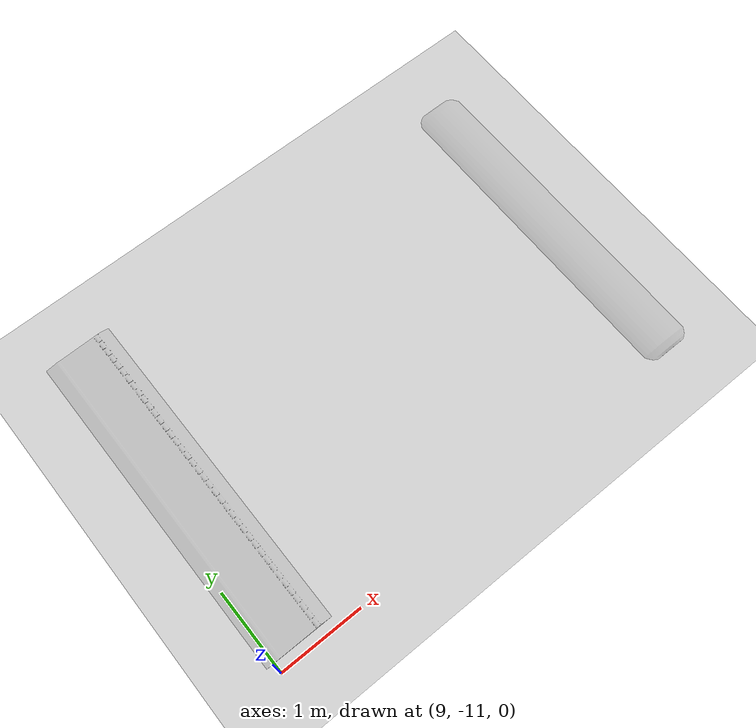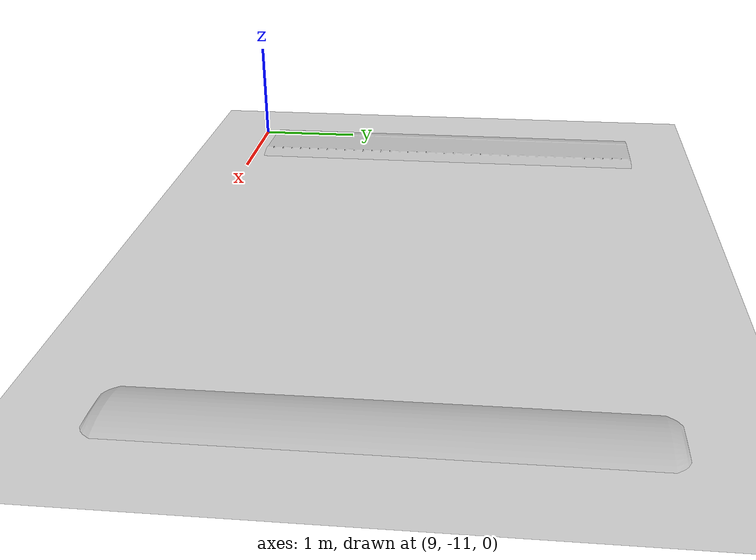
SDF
<sdf version="1.7">
 <world name="default">
  <model name="ground_plane">
   <static>1</static>
   <link name="link">
    <collision name="collision">
     <geometry><plane><normal>0 0 1</normal><size>100 100</size></plane></geometry>
     <surface><friction><ode><mu>100</mu><mu2>50</mu2></ode></friction></surface>
    </collision>
    <visual name="visual">
     <cast_shadows>0</cast_shadows>
     <geometry><plane><normal>0 0 1</normal><size>100 100</size></plane></geometry>
     <material>
      <script><uri>file://media/materials/scripts/gazebo.material</uri><name>Gazebo/Grey</name></script>
     </material>
    </visual>
   </link>
  </model>
  <model name="speed_bump_2_short">
   <static>1</static>
   <link name="link">
    <collision name="collision">
     <geometry><mesh><uri>model://speed_bump_2_short//bump_1_060.dae</uri></mesh></geometry>
     <surface><friction><ode><mu>0.9</mu><mu2>0.6</mu2></ode></friction></surface>
    </collision>
    <visual name="visual">
     <geometry><mesh><uri>model://speed_bump_2_short//bump_1_060.dae</uri></mesh></geometry>
    </visual>
   </link>
   <pose>9.72068 -10.8812 0 0 -0 1.57001</pose>
  </model>
  <model name="speed_bump_3_short">
   <static>1</static>
   <link name="link">
    <collision name="collision">
     <geometry><mesh><uri>model://speed_bump_3_short//bump_3_060.dae</uri></mesh></geometry>
     <surface><friction><ode><mu>0.9</mu><mu2>0.6</mu2></ode></friction></surface>
    </collision>
    <visual name="visual">
     <geometry><mesh><uri>model://speed_bump_3_short//bump_3_060.dae</uri></mesh></geometry>
    </visual>
   </link>
   <pose>14.689 -10.9598 0 0 -0 1.57268</pose>
  </model>
 </world>
</sdf>
